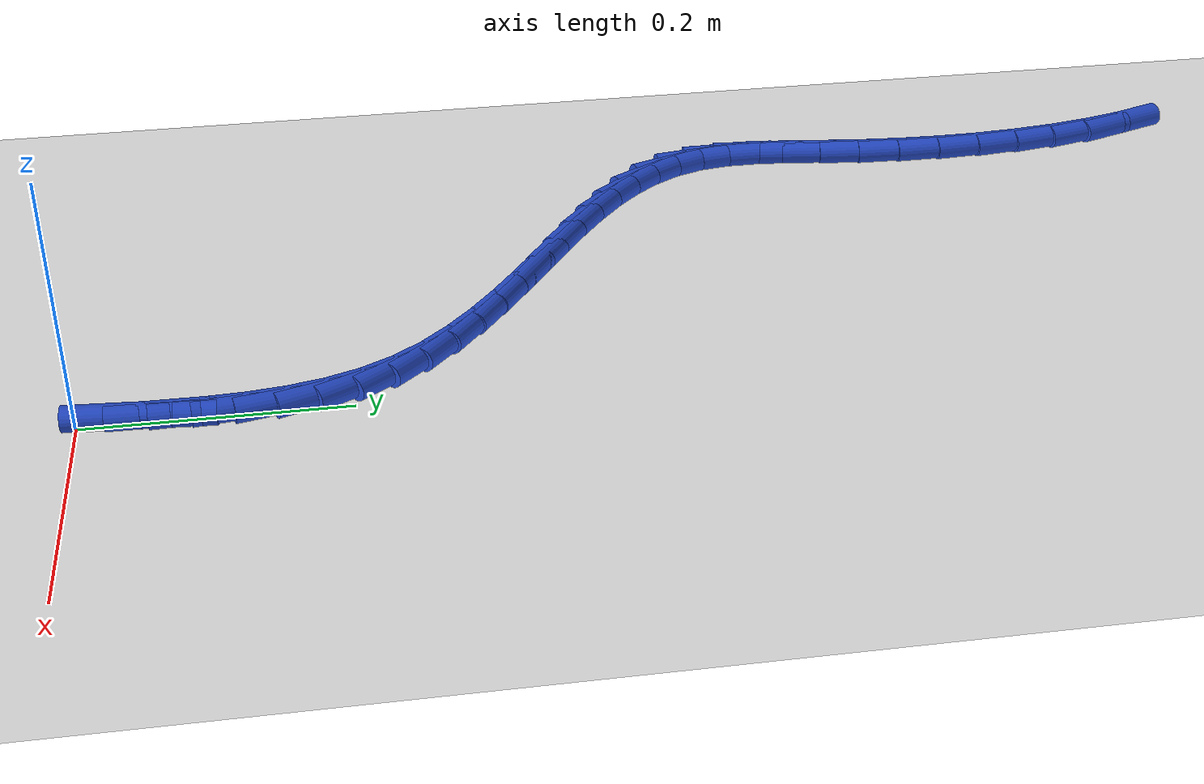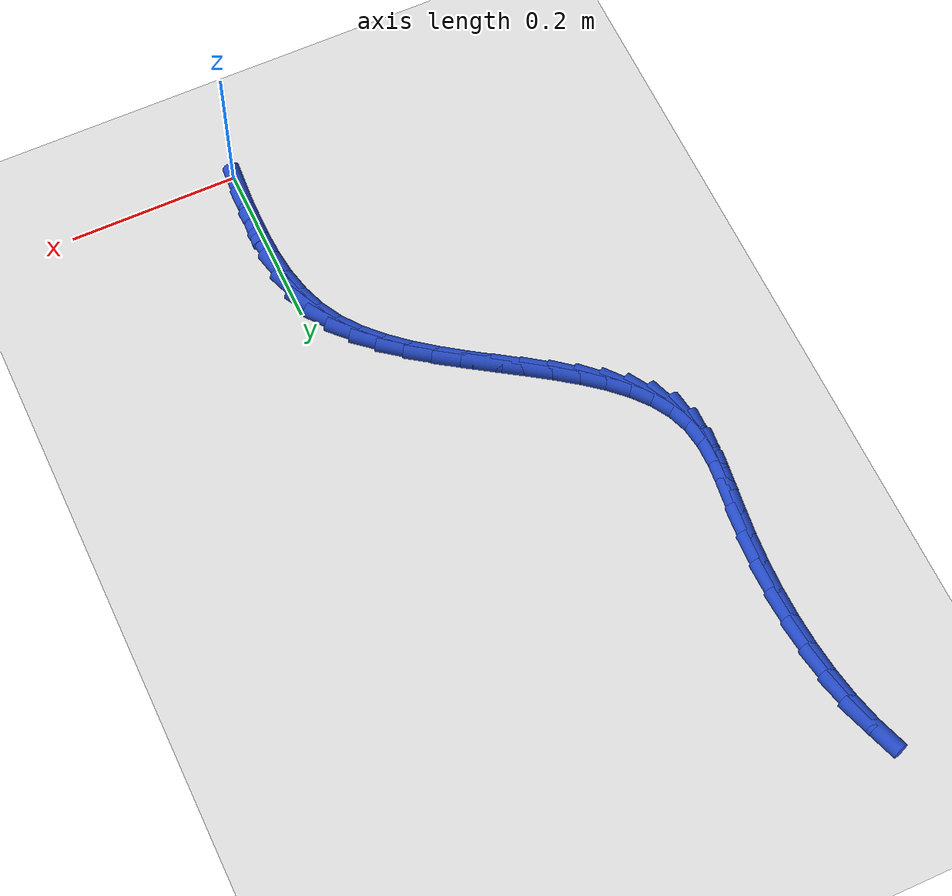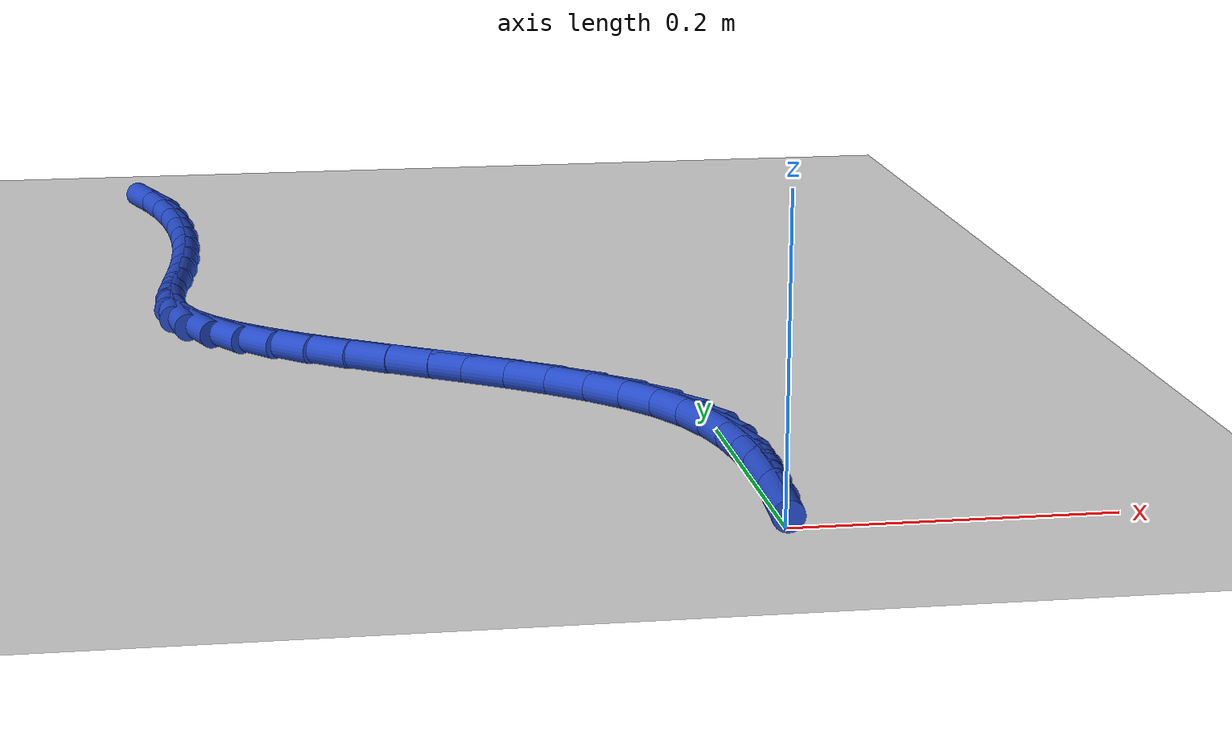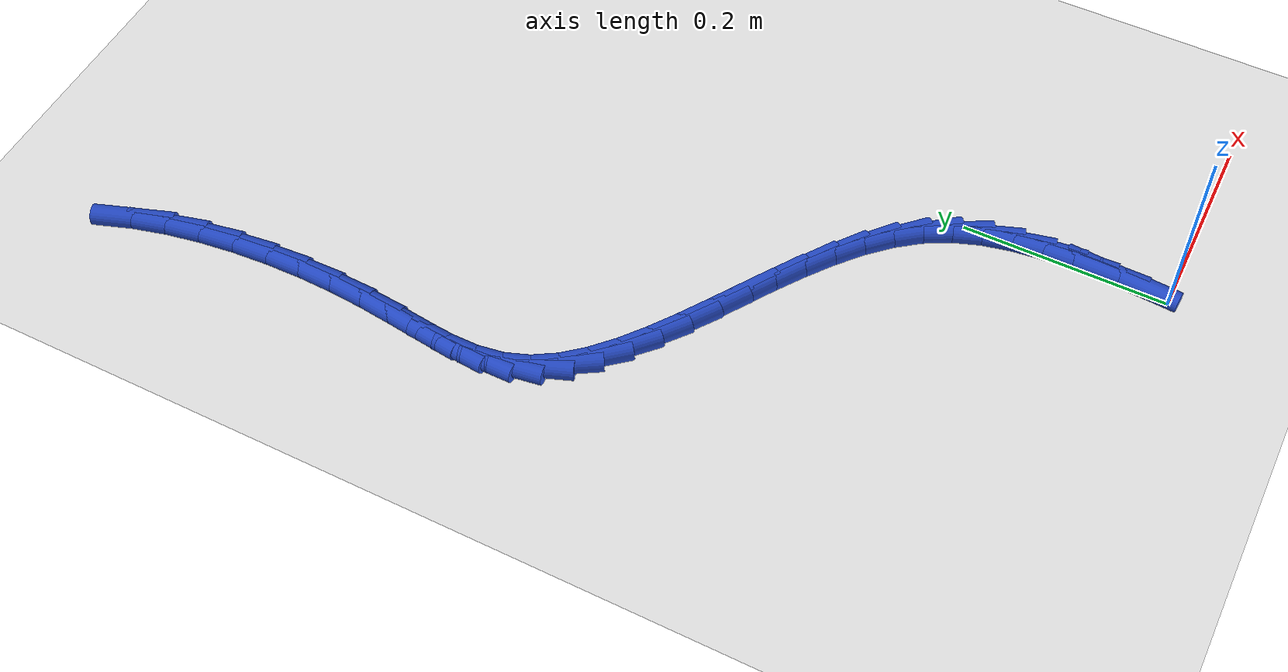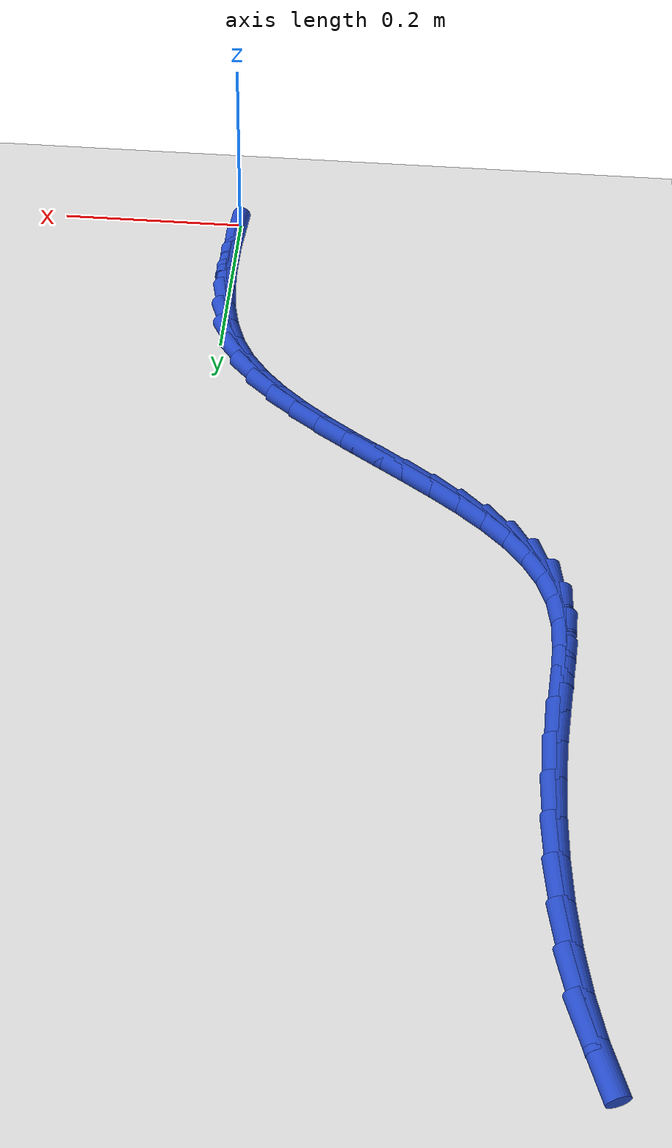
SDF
<sdf version="1.6">
 <world name="default">
  <model name="ground_plane">
   <static>1</static>
   <link name="link">
    <collision name="collision">
     <geometry><plane><normal>0 0 1</normal><size>100 100</size></plane></geometry>
     <surface><friction><ode><mu>100</mu><mu2>50</mu2></ode></friction></surface>
    </collision>
    <visual name="visual">
     <cast_shadows>0</cast_shadows>
     <geometry><plane><normal>0 0 1</normal><size>100 100</size></plane></geometry>
     <material>
      <script><uri>file://media/materials/scripts/gazebo.material</uri><name>Gazebo/WhiteGlow</name></script>
     </material>
    </visual>
   </link>
  </model>
  <model name="line">
   <link name="link_2">
    <pose>0.0034254664954342694 0.06157514513458124 0.01 0 1.57 1.5615450401642117</pose>
    <collision name="collision">
     <geometry><cylinder><radius>0.01</radius><length>0.08</length></cylinder></geometry>
    </collision>
    <visual name="visual">
     <material>
      <script><name>Gazebo/Blue</name><uri>file://media/materials/scripts/gazebo.material</uri></script>
     </material>
     <geometry><cylinder><radius>0.01</radius><length>0.08</length></cylinder></geometry>
    </visual>
   </link>
   <link name="link_3">
    <pose>0.0037100426474062655 0.09233497829927455 0.01 0 1.57 -1.5245862306204465</pose>
    <collision name="collision">
     <geometry><cylinder><radius>0.01</radius><length>0.08</length></cylinder></geometry>
    </collision>
    <visual name="visual">
     <material>
      <script><name>Gazebo/Blue</name><uri>file://media/materials/scripts/gazebo.material</uri></script>
     </material>
     <geometry><cylinder><radius>0.01</radius><length>0.08</length></cylinder></geometry>
    </visual>
   </link>
   <link name="link_4">
    <pose>0.002308976908181463 0.12263286657813191 0.01 0 1.57 -1.4481456789380212</pose>
    <collision name="collision">
     <geometry><cylinder><radius>0.01</radius><length>0.08</length></cylinder></geometry>
    </collision>
    <visual name="visual">
     <material>
      <script><name>Gazebo/Blue</name><uri>file://media/materials/scripts/gazebo.material</uri></script>
     </material>
     <geometry><cylinder><radius>0.01</radius><length>0.08</length></cylinder></geometry>
    </visual>
   </link>
   <link name="link_5">
    <pose>-0.0013278835927651618 0.15213622100807495 0.01 0 1.57 -1.3482023990741532</pose>
    <collision name="collision">
     <geometry><cylinder><radius>0.01</radius><length>0.08</length></cylinder></geometry>
    </collision>
    <visual name="visual">
     <material>
      <script><name>Gazebo/Blue</name><uri>file://media/materials/scripts/gazebo.material</uri></script>
     </material>
     <geometry><cylinder><radius>0.01</radius><length>0.08</length></cylinder></geometry>
    </visual>
   </link>
   <link name="link_6">
    <pose>-0.0077506917259586375 0.1805124526260254 0.01 0 1.57 -1.222974496023746</pose>
    <collision name="collision">
     <geometry><cylinder><radius>0.01</radius><length>0.08</length></cylinder></geometry>
    </collision>
    <visual name="visual">
     <material>
      <script><name>Gazebo/Blue</name><uri>file://media/materials/scripts/gazebo.material</uri></script>
     </material>
     <geometry><cylinder><radius>0.01</radius><length>0.08</length></cylinder></geometry>
    </visual>
   </link>
   <link name="link_7">
    <pose>-0.017509600361923984 0.2074289724689049 0.01 0 1.57 -1.0737983760830216</pose>
    <collision name="collision">
     <geometry><cylinder><radius>0.01</radius><length>0.08</length></cylinder></geometry>
    </collision>
    <visual name="visual">
     <material>
      <script><name>Gazebo/Blue</name><uri>file://media/materials/scripts/gazebo.material</uri></script>
     </material>
     <geometry><cylinder><radius>0.01</radius><length>0.08</length></cylinder></geometry>
    </visual>
   </link>
   <link name="link_8">
    <pose>-0.031141001407778198 0.2325601083676116 0.01 0 1.57 -0.9252251454450983</pose>
    <collision name="collision">
     <geometry><cylinder><radius>0.01</radius><length>0.08</length></cylinder></geometry>
    </collision>
    <visual name="visual">
     <material>
      <script><name>Gazebo/Blue</name><uri>file://media/materials/scripts/gazebo.material</uri></script>
     </material>
     <geometry><cylinder><radius>0.01</radius><length>0.08</length></cylinder></geometry>
    </visual>
   </link>
   <link name="link_9">
    <pose>-0.048673055452506976 0.25583564492708116 0.01 0 1.57 -0.8055952407432211</pose>
    <collision name="collision">
     <geometry><cylinder><radius>0.01</radius><length>0.08</length></cylinder></geometry>
    </collision>
    <visual name="visual">
     <material>
      <script><name>Gazebo/Blue</name><uri>file://media/materials/scripts/gazebo.material</uri></script>
     </material>
     <geometry><cylinder><radius>0.01</radius><length>0.08</length></cylinder></geometry>
    </visual>
   </link>
   <link name="link_10">
    <pose>-0.06948877097055095 0.27750964522952143 0.01 0 1.57 -0.7148730877086096</pose>
    <collision name="collision">
     <geometry><cylinder><radius>0.01</radius><length>0.08</length></cylinder></geometry>
    </collision>
    <visual name="visual">
     <material>
      <script><name>Gazebo/Blue</name><uri>file://media/materials/scripts/gazebo.material</uri></script>
     </material>
     <geometry><cylinder><radius>0.01</radius><length>0.08</length></cylinder></geometry>
    </visual>
   </link>
   <link name="link_11">
    <pose>-0.0929295218885654 0.2978570994957995 0.01 0 1.57 -0.6495324747695036</pose>
    <collision name="collision">
     <geometry><cylinder><radius>0.01</radius><length>0.08</length></cylinder></geometry>
    </collision>
    <visual name="visual">
     <material>
      <script><name>Gazebo/Blue</name><uri>file://media/materials/scripts/gazebo.material</uri></script>
     </material>
     <geometry><cylinder><radius>0.01</radius><length>0.08</length></cylinder></geometry>
    </visual>
   </link>
   <link name="link_12">
    <pose>-0.11833668213320567 0.31715299794678276 0.01 0 1.57 -0.606161113369923</pose>
    <collision name="collision">
     <geometry><cylinder><radius>0.01</radius><length>0.08</length></cylinder></geometry>
    </collision>
    <visual name="visual">
     <material>
      <script><name>Gazebo/Blue</name><uri>file://media/materials/scripts/gazebo.material</uri></script>
     </material>
     <geometry><cylinder><radius>0.01</radius><length>0.08</length></cylinder></geometry>
    </visual>
   </link>
   <link name="link_13">
    <pose>-0.14505162563112706 0.3356723308033385 0.01 0 1.57 -0.5822891181065538</pose>
    <collision name="collision">
     <geometry><cylinder><radius>0.01</radius><length>0.08</length></cylinder></geometry>
    </collision>
    <visual name="visual">
     <material>
      <script><name>Gazebo/Blue</name><uri>file://media/materials/scripts/gazebo.material</uri></script>
     </material>
     <geometry><cylinder><radius>0.01</radius><length>0.08</length></cylinder></geometry>
    </visual>
   </link>
   <link name="link_14">
    <pose>-0.17241572630898475 0.3536900882863339 0.01 0 1.57 -0.5766491664591904</pose>
    <collision name="collision">
     <geometry><cylinder><radius>0.01</radius><length>0.08</length></cylinder></geometry>
    </collision>
    <visual name="visual">
     <material>
      <script><name>Gazebo/Blue</name><uri>file://media/materials/scripts/gazebo.material</uri></script>
     </material>
     <geometry><cylinder><radius>0.01</radius><length>0.08</length></cylinder></geometry>
    </visual>
   </link>
   <link name="link_15">
    <pose>-0.1997703580934342 0.37148126061663644 0.01 0 1.57 -0.5892611143224346</pose>
    <collision name="collision">
     <geometry><cylinder><radius>0.01</radius><length>0.08</length></cylinder></geometry>
    </collision>
    <visual name="visual">
     <material>
      <script><name>Gazebo/Blue</name><uri>file://media/materials/scripts/gazebo.material</uri></script>
     </material>
     <geometry><cylinder><radius>0.01</radius><length>0.08</length></cylinder></geometry>
    </visual>
   </link>
   <link name="link_16">
    <pose>-0.22645689491113064 0.3893208380151132 0.01 0 1.57 -0.6215230118221199</pose>
    <collision name="collision">
     <geometry><cylinder><radius>0.01</radius><length>0.08</length></cylinder></geometry>
    </collision>
    <visual name="visual">
     <material>
      <script><name>Gazebo/Blue</name><uri>file://media/materials/scripts/gazebo.material</uri></script>
     </material>
     <geometry><cylinder><radius>0.01</radius><length>0.08</length></cylinder></geometry>
    </visual>
   </link>
   <link name="link_17">
    <pose>-0.25181671068872935 0.4074838107026316 0.01 0 1.57 -0.6763505693773352</pose>
    <collision name="collision">
     <geometry><cylinder><radius>0.01</radius><length>0.08</length></cylinder></geometry>
    </collision>
    <visual name="visual">
     <material>
      <script><name>Gazebo/Blue</name><uri>file://media/materials/scripts/gazebo.material</uri></script>
     </material>
     <geometry><cylinder><radius>0.01</radius><length>0.08</length></cylinder></geometry>
    </visual>
   </link>
   <link name="link_18">
    <pose>-0.2751911793528856 0.4262451689000589 0.01 0 1.57 -0.7582586543871765</pose>
    <collision name="collision">
     <geometry><cylinder><radius>0.01</radius><length>0.08</length></cylinder></geometry>
    </collision>
    <visual name="visual">
     <material>
      <script><name>Gazebo/Blue</name><uri>file://media/materials/scripts/gazebo.material</uri></script>
     </material>
     <geometry><cylinder><radius>0.01</radius><length>0.08</length></cylinder></geometry>
    </visual>
   </link>
   <link name="link_19">
    <pose>-0.2959216748302549 0.4458799028282625 0.01 0 1.57 -0.8729808142229536</pose>
    <collision name="collision">
     <geometry><cylinder><radius>0.01</radius><length>0.08</length></cylinder></geometry>
    </collision>
    <visual name="visual">
     <material>
      <script><name>Gazebo/Blue</name><uri>file://media/materials/scripts/gazebo.material</uri></script>
     </material>
     <geometry><cylinder><radius>0.01</radius><length>0.08</length></cylinder></geometry>
    </visual>
   </link>
   <link name="link_20">
    <pose>-0.3133495710474923 0.46666300270810945 0.01 0 1.57 -1.0256619737185508</pose>
    <collision name="collision">
     <geometry><cylinder><radius>0.01</radius><length>0.08</length></cylinder></geometry>
    </collision>
    <visual name="visual">
     <material>
      <script><name>Gazebo/Blue</name><uri>file://media/materials/scripts/gazebo.material</uri></script>
     </material>
     <geometry><cylinder><radius>0.01</radius><length>0.08</length></cylinder></geometry>
    </visual>
   </link>
   <link name="link_21">
    <pose>-0.32681624193125325 0.4888694587604673 0.01 0 1.57 -1.2163412526721904</pose>
    <collision name="collision">
     <geometry><cylinder><radius>0.01</radius><length>0.08</length></cylinder></geometry>
    </collision>
    <visual name="visual">
     <material>
      <script><name>Gazebo/Blue</name><uri>file://media/materials/scripts/gazebo.material</uri></script>
     </material>
     <geometry><cylinder><radius>0.01</radius><length>0.08</length></cylinder></geometry>
    </visual>
   </link>
   <link name="link_22">
    <pose>-0.33566306140819296 0.5127742612062034 0.01 0 1.57 -1.421114778737632</pose>
    <collision name="collision">
     <geometry><cylinder><radius>0.01</radius><length>0.08</length></cylinder></geometry>
    </collision>
    <visual name="visual">
     <material>
      <script><name>Gazebo/Blue</name><uri>file://media/materials/scripts/gazebo.material</uri></script>
     </material>
     <geometry><cylinder><radius>0.01</radius><length>0.08</length></cylinder></geometry>
    </visual>
   </link>
   <link name="link_23">
    <pose>-0.3395571328438654 0.5385953880955044 0.01 0 1.57 1.5688354151365265</pose>
    <collision name="collision">
     <geometry><cylinder><radius>0.01</radius><length>0.08</length></cylinder></geometry>
    </collision>
    <visual name="visual">
     <material>
      <script><name>Gazebo/Blue</name><uri>file://media/materials/scripts/gazebo.material</uri></script>
     </material>
     <geometry><cylinder><radius>0.01</radius><length>0.08</length></cylinder></geometry>
    </visual>
   </link>
   <link name="link_24">
    <pose>-0.3395027736011683 0.5663167659512824 0.01 0 1.57 1.4811632080917554</pose>
    <collision name="collision">
     <geometry><cylinder><radius>0.01</radius><length>0.08</length></cylinder></geometry>
    </collision>
    <visual name="visual">
     <material>
      <script><name>Gazebo/Blue</name><uri>file://media/materials/scripts/gazebo.material</uri></script>
     </material>
     <geometry><cylinder><radius>0.01</radius><length>0.08</length></cylinder></geometry>
    </visual>
   </link>
   <link name="link_25">
    <pose>-0.3368474030931749 0.5958622684111115 0.01 0 1.57 1.4465270861183872</pose>
    <collision name="collision">
     <geometry><cylinder><radius>0.01</radius><length>0.08</length></cylinder></geometry>
    </collision>
    <visual name="visual">
     <material>
      <script><name>Gazebo/Blue</name><uri>file://media/materials/scripts/gazebo.material</uri></script>
     </material>
     <geometry><cylinder><radius>0.01</radius><length>0.08</length></cylinder></geometry>
    </visual>
   </link>
   <link name="link_26">
    <pose>-0.33293844095012587 0.6271557690745546 0.01 0 1.57 1.4555773377724874</pose>
    <collision name="collision">
     <geometry><cylinder><radius>0.01</radius><length>0.08</length></cylinder></geometry>
    </collision>
    <visual name="visual">
     <material>
      <script><name>Gazebo/Blue</name><uri>file://media/materials/scripts/gazebo.material</uri></script>
     </material>
     <geometry><cylinder><radius>0.01</radius><length>0.08</length></cylinder></geometry>
    </visual>
   </link>
   <link name="link_27">
    <pose>-0.32912330661153416 0.6601211414725179 0.01 0 1.57 1.495986587267553</pose>
    <collision name="collision">
     <geometry><cylinder><radius>0.01</radius><length>0.08</length></cylinder></geometry>
    </collision>
    <visual name="visual">
     <material>
      <script><name>Gazebo/Blue</name><uri>file://media/materials/scripts/gazebo.material</uri></script>
     </material>
     <geometry><cylinder><radius>0.01</radius><length>0.08</length></cylinder></geometry>
    </visual>
   </link>
   <link name="link_28">
    <pose>-0.32653865088241263 0.6946063872801921 0.01 0 1.57 1.541662106381964</pose>
    <collision name="collision">
     <geometry><cylinder><radius>0.01</radius><length>0.08</length></cylinder></geometry>
    </collision>
    <visual name="visual">
     <material>
      <script><name>Gazebo/Blue</name><uri>file://media/materials/scripts/gazebo.material</uri></script>
     </material>
     <geometry><cylinder><radius>0.01</radius><length>0.08</length></cylinder></geometry>
    </visual>
   </link>
   <link name="link_29">
    <pose>-0.3255023915303317 0.7301647831296748 0.01 0 1.57 -1.5533174904945293</pose>
    <collision name="collision">
     <geometry><cylinder><radius>0.01</radius><length>0.08</length></cylinder></geometry>
    </collision>
    <visual name="visual">
     <material>
      <script><name>Gazebo/Blue</name><uri>file://media/materials/scripts/gazebo.material</uri></script>
     </material>
     <geometry><cylinder><radius>0.01</radius><length>0.08</length></cylinder></geometry>
    </visual>
   </link>
   <link name="link_30">
    <pose>-0.32613367373583013 0.766278052098242 0.01 0 1.57 -1.5040084522253485</pose>
    <collision name="collision">
     <geometry><cylinder><radius>0.01</radius><length>0.08</length></cylinder></geometry>
    </collision>
    <visual name="visual">
     <material>
      <script><name>Gazebo/Blue</name><uri>file://media/materials/scripts/gazebo.material</uri></script>
     </material>
     <geometry><cylinder><radius>0.01</radius><length>0.08</length></cylinder></geometry>
    </visual>
   </link>
   <link name="link_31">
    <pose>-0.32855164267944714 0.8024279172631695 0.01 0 1.57 -1.45016203255996</pose>
    <collision name="collision">
     <geometry><cylinder><radius>0.01</radius><length>0.08</length></cylinder></geometry>
    </collision>
    <visual name="visual">
     <material>
      <script><name>Gazebo/Blue</name><uri>file://media/materials/scripts/gazebo.material</uri></script>
     </material>
     <geometry><cylinder><radius>0.01</radius><length>0.08</length></cylinder></geometry>
    </visual>
   </link>
   <link name="link_32">
    <pose>-0.33287544354172177 0.8380961017017343 0.01 0 1.57 -1.389673682978109</pose>
    <collision name="collision">
     <geometry><cylinder><radius>0.01</radius><length>0.08</length></cylinder></geometry>
    </collision>
    <visual name="visual">
     <material>
      <script><name>Gazebo/Blue</name><uri>file://media/materials/scripts/gazebo.material</uri></script>
     </material>
     <geometry><cylinder><radius>0.01</radius><length>0.08</length></cylinder></geometry>
    </visual>
   </link>
   <link name="link_33">
    <pose>-0.33922422150319304 0.8727643284912117 0.01 0 1.57 -1.3199945525088959</pose>
    <collision name="collision">
     <geometry><cylinder><radius>0.01</radius><length>0.08</length></cylinder></geometry>
    </collision>
    <visual name="visual">
     <material>
      <script><name>Gazebo/Blue</name><uri>file://media/materials/scripts/gazebo.material</uri></script>
     </material>
     <geometry><cylinder><radius>0.01</radius><length>0.08</length></cylinder></geometry>
    </visual>
   </link>
   <link name="link_34">
    <pose>-0.3477171217444001 0.9059143207088785 0.01 0 1.57 -1.2379505505037234</pose>
    <collision name="collision">
     <geometry><cylinder><radius>0.01</radius><length>0.08</length></cylinder></geometry>
    </collision>
    <visual name="visual">
     <material>
      <script><name>Gazebo/Blue</name><uri>file://media/materials/scripts/gazebo.material</uri></script>
     </material>
     <geometry><cylinder><radius>0.01</radius><length>0.08</length></cylinder></geometry>
    </visual>
   </link>
   <link name="link_281">
    <pose>0.0021153930620595217 0.030756540440074316 0.01 0 1.57 1.5011266530231548</pose>
    <collision name="collision">
     <geometry><cylinder><radius>0.01</radius><length>0.08</length></cylinder></geometry>
    </collision>
    <visual name="visual">
     <material>
      <script><name>Gazebo/Blue</name><uri>file://media/materials/scripts/gazebo.material</uri></script>
     </material>
     <geometry><cylinder><radius>0.01</radius><length>0.08</length></cylinder></geometry>
    </visual>
   </link>
   <link name="link_282">
    <pose>0.004305400409586389 0.06213982027813318 0.01 0 1.57 1.5016211859958877</pose>
    <collision name="collision">
     <geometry><cylinder><radius>0.01</radius><length>0.08</length></cylinder></geometry>
    </collision>
    <visual name="visual">
     <material>
      <script><name>Gazebo/Blue</name><uri>file://media/materials/scripts/gazebo.material</uri></script>
     </material>
     <geometry><cylinder><radius>0.01</radius><length>0.08</length></cylinder></geometry>
    </visual>
   </link>
  </model>
 </world>
</sdf>
